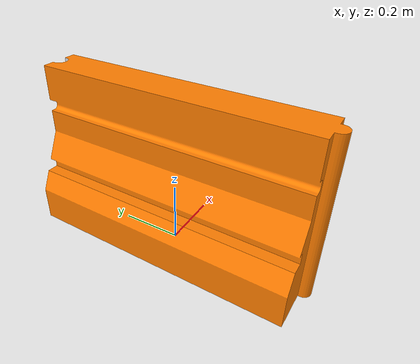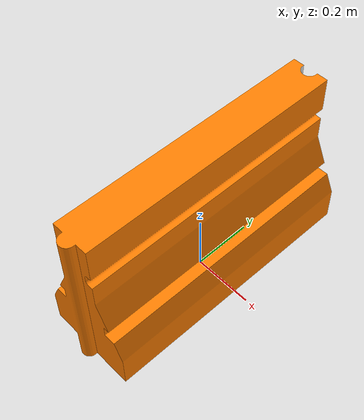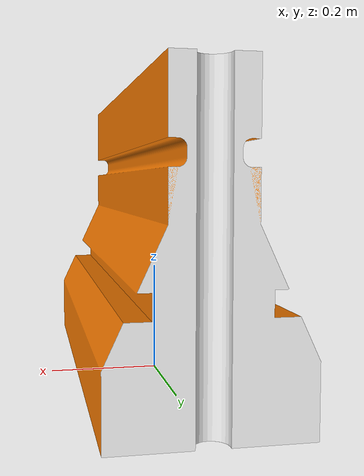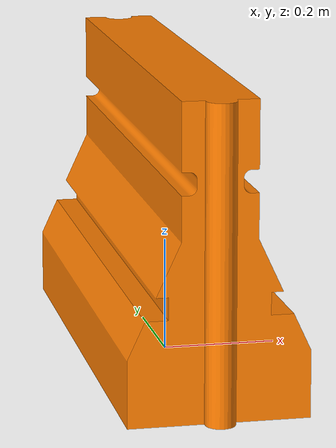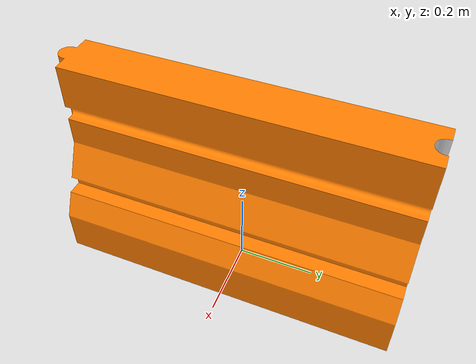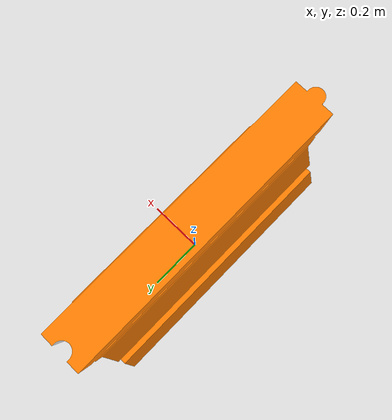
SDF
<?xml version="1.0" ?>
<sdf version="1.4">
  <model name="drc_practice_organge_jersey_barrier">
    <static>true</static>
    <link name="link">
      <visual name="visual">
        <geometry>
          <mesh>
            <uri>model://drc_practice_orange_jersey_barrier/meshes/jersey_barrier.dae</uri>
            <scale>0.5 0.5 0.5</scale>
          </mesh>
        </geometry>
      </visual>

      <collision name="collision">
        <geometry>
          <mesh>
            <uri>model://drc_practice_orange_jersey_barrier/meshes/jersey_barrier.dae</uri>
            <scale>0.5 0.5 0.5</scale>
          </mesh>
        </geometry>
      </collision>
    </link>
  </model>
</sdf>
